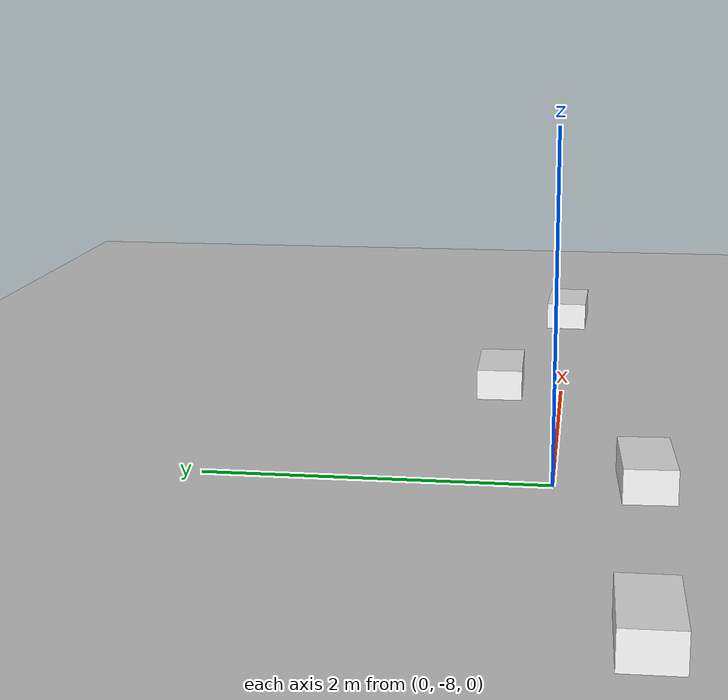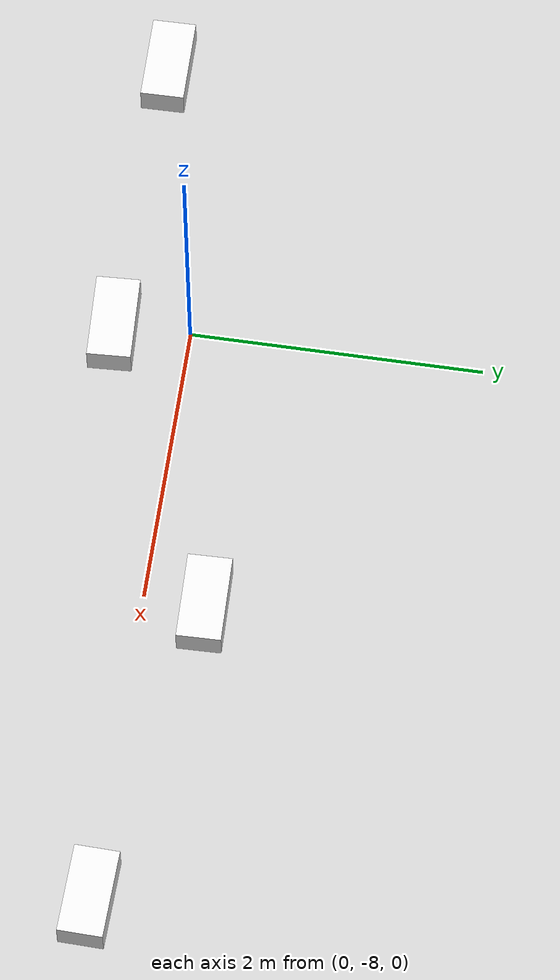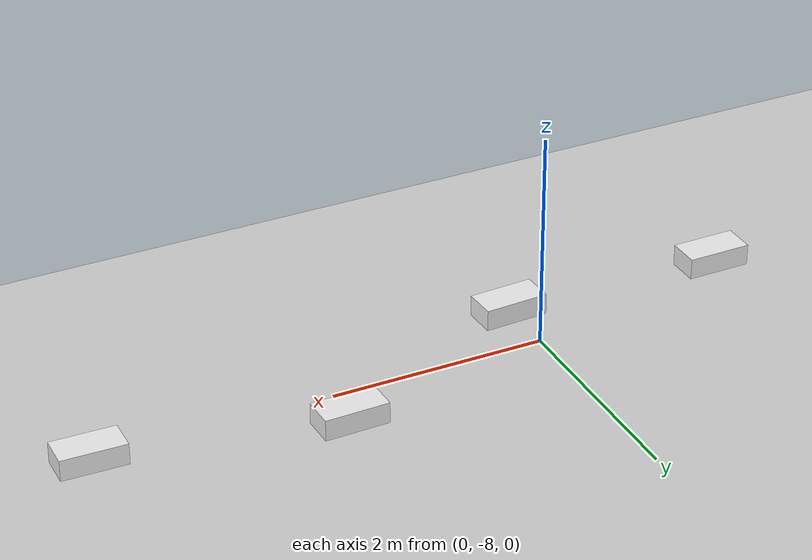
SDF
<sdf version="1.7">
 <world name="default">
  <light name="sun" type="directional">
   <pose>0 0 10 0 -0 0</pose>
   <diffuse>0.8 0.8 0.8 1</diffuse>
   <specular>0.2 0.2 0.2 1</specular>
   <attenuation>
    <range>1000</range>
    <constant>0.9</constant>
    <linear>0.01</linear>
    <quadratic>0.001</quadratic>
   </attenuation>
   <direction>-0.5 0.1 -0.9</direction>
   <spot><inner_angle>0</inner_angle><outer_angle>0</outer_angle><falloff>0</falloff></spot>
  </light>
  <model name="track_plane">
   <static>1</static>
   <link name="link">
    <collision name="collision">
     <geometry><plane><normal>0 0 1</normal><size>90 90</size></plane></geometry>
     <surface><friction><ode><mu>100</mu><mu2>50</mu2></ode></friction></surface>
    </collision>
    <visual name="visual">
     <cast_shadows>0</cast_shadows>
     <geometry><plane><normal>0 0 1</normal><size>22 22</size></plane></geometry>
     <material>
      <script><uri>model://materials/gazebo.material</uri><name>Carolo/Track_texture2</name></script>
     </material>
    </visual>
   </link>
  </model>
  <gravity>0 0 -9.8</gravity>
  <magnetic_field>6e-06 2.3e-05 -4.2e-05</magnetic_field>
  <atmosphere type="adiabatic"/>
  <physics type="bullet">
   <max_step_size>0.001</max_step_size>
   <real_time_factor>1</real_time_factor>
   <real_time_update_rate>1000</real_time_update_rate>
  </physics>
  <scene><ambient>0.4 0.4 0.4 1</ambient><background>0.7 0.7 0.7 1</background><shadows>1</shadows></scene>
  <spherical_coordinates>
   <surface_model>EARTH_WGS84</surface_model>
   <latitude_deg>0</latitude_deg>
   <longitude_deg>0</longitude_deg>
   <elevation>0</elevation>
   <heading_deg>0</heading_deg>
  </spherical_coordinates>
  <model name="unit_box_white">
   <link name="link">
    <inertial>
     <mass>1</mass>
     <inertia>
      <ixx>0.166667</ixx>
      <ixy>0</ixy>
      <ixz>0</ixz>
      <iyy>0.166667</iyy>
      <iyz>0</iyz>
      <izz>0.166667</izz>
     </inertia>
    </inertial>
    <visual name="visual">
     <geometry><box><size>0.6 0.3 0.2</size></box></geometry>
     <material>
      <script><name>Gazebo/White</name><uri>file://media/materials/scripts/gazebo.material</uri></script>
      <shader type="pixel"><normal_map>__default__</normal_map></shader>
      <ambient>1 1 1 1</ambient>
      <diffuse>0.7 0.7 0.7 1</diffuse>
      <specular>0.01 0.01 0.01 1</specular>
      <emissive>0 0 0 1</emissive>
      <lighting>1</lighting>
     </material>
    </visual>
    <collision name="collision">
     <geometry><box><size>0.6 0.3 0.2</size></box></geometry>
     <surface>
      <friction>
       <ode><mu>1</mu><mu2>1</mu2><fdir1>0 0 0</fdir1><slip1>0</slip1><slip2>0</slip2></ode>
       <torsional>
        <coefficient>1</coefficient>
        <patch_radius>0</patch_radius>
        <surface_radius>0</surface_radius>
        <use_patch_radius>1</use_patch_radius>
        <ode><slip>0</slip></ode>
       </torsional>
      </friction>
      <bounce><restitution_coefficient>0</restitution_coefficient><threshold>1e+06</threshold></bounce>
      <contact>
       <collide_without_contact>0</collide_without_contact>
       <collide_without_contact_bitmask>1</collide_without_contact_bitmask>
       <collide_bitmask>1</collide_bitmask>
       <ode>
        <soft_cfm>0</soft_cfm>
        <soft_erp>0.2</soft_erp>
        <kp>1e+13</kp>
        <kd>1</kd>
        <max_vel>0.01</max_vel>
        <min_depth>0</min_depth>
       </ode>
       <bullet>
        <split_impulse>1</split_impulse>
        <split_impulse_penetration_threshold>-0.01</split_impulse_penetration_threshold>
        <soft_cfm>0</soft_cfm>
        <soft_erp>0.2</soft_erp>
        <kp>1e+13</kp>
        <kd>1</kd>
       </bullet>
      </contact>
     </surface>
    </collision>
   </link>
   <static>0</static>
   <pose>-2.02674 -8.4692 0.1 0 -0 0.009254</pose>
  </model>
  <model name="unit_box_white_clone">
   <link name="link">
    <inertial>
     <mass>1</mass>
     <inertia>
      <ixx>0.166667</ixx>
      <ixy>0</ixy>
      <ixz>0</ixz>
      <iyy>0.166667</iyy>
      <iyz>0</iyz>
      <izz>0.166667</izz>
     </inertia>
    </inertial>
    <visual name="visual">
     <geometry><box><size>0.6 0.3 0.2</size></box></geometry>
     <material>
      <script><name>Gazebo/White</name><uri>file://media/materials/scripts/gazebo.material</uri></script>
      <shader type="pixel"><normal_map>__default__</normal_map></shader>
      <ambient>1 1 1 1</ambient>
      <diffuse>0.7 0.7 0.7 1</diffuse>
      <specular>0.01 0.01 0.01 1</specular>
      <emissive>0 0 0 1</emissive>
      <lighting>1</lighting>
     </material>
    </visual>
    <collision name="collision">
     <geometry><box><size>0.6 0.3 0.2</size></box></geometry>
     <surface>
      <friction>
       <ode><mu>1</mu><mu2>1</mu2><fdir1>0 0 0</fdir1><slip1>0</slip1><slip2>0</slip2></ode>
       <torsional>
        <coefficient>1</coefficient>
        <patch_radius>0</patch_radius>
        <surface_radius>0</surface_radius>
        <use_patch_radius>1</use_patch_radius>
        <ode><slip>0</slip></ode>
       </torsional>
      </friction>
      <bounce><restitution_coefficient>0</restitution_coefficient><threshold>1e+06</threshold></bounce>
      <contact>
       <collide_without_contact>0</collide_without_contact>
       <collide_without_contact_bitmask>1</collide_without_contact_bitmask>
       <collide_bitmask>1</collide_bitmask>
       <ode>
        <soft_cfm>0</soft_cfm>
        <soft_erp>0.2</soft_erp>
        <kp>1e+13</kp>
        <kd>1</kd>
        <max_vel>0.01</max_vel>
        <min_depth>0</min_depth>
       </ode>
       <bullet>
        <split_impulse>1</split_impulse>
        <split_impulse_penetration_threshold>-0.01</split_impulse_penetration_threshold>
        <soft_cfm>0</soft_cfm>
        <soft_erp>0.2</soft_erp>
        <kp>1e+13</kp>
        <kd>1</kd>
       </bullet>
      </contact>
     </surface>
    </collision>
   </link>
   <static>0</static>
   <pose>0.044329 -8.51614 0.1 0 -0 0.047052</pose>
  </model>
  <model name="unit_box_white_clone_0">
   <link name="link">
    <inertial>
     <mass>1</mass>
     <inertia>
      <ixx>0.166667</ixx>
      <ixy>0</ixy>
      <ixz>0</ixz>
      <iyy>0.166667</iyy>
      <iyz>0</iyz>
      <izz>0.166667</izz>
     </inertia>
    </inertial>
    <visual name="visual">
     <geometry><box><size>0.6 0.3 0.2</size></box></geometry>
     <material>
      <script><name>Gazebo/White</name><uri>file://media/materials/scripts/gazebo.material</uri></script>
      <shader type="pixel"><normal_map>__default__</normal_map></shader>
      <ambient>1 1 1 1</ambient>
      <diffuse>0.7 0.7 0.7 1</diffuse>
      <specular>0.01 0.01 0.01 1</specular>
      <emissive>0 0 0 1</emissive>
      <lighting>1</lighting>
     </material>
    </visual>
    <collision name="collision">
     <geometry><box><size>0.6 0.3 0.2</size></box></geometry>
     <surface>
      <friction>
       <ode><mu>1</mu><mu2>1</mu2><fdir1>0 0 0</fdir1><slip1>0</slip1><slip2>0</slip2></ode>
       <torsional>
        <coefficient>1</coefficient>
        <patch_radius>0</patch_radius>
        <surface_radius>0</surface_radius>
        <use_patch_radius>1</use_patch_radius>
        <ode><slip>0</slip></ode>
       </torsional>
      </friction>
      <bounce><restitution_coefficient>0</restitution_coefficient><threshold>1e+06</threshold></bounce>
      <contact>
       <collide_without_contact>0</collide_without_contact>
       <collide_without_contact_bitmask>1</collide_without_contact_bitmask>
       <collide_bitmask>1</collide_bitmask>
       <ode>
        <soft_cfm>0</soft_cfm>
        <soft_erp>0.2</soft_erp>
        <kp>1e+13</kp>
        <kd>1</kd>
        <max_vel>0.01</max_vel>
        <min_depth>0</min_depth>
       </ode>
       <bullet>
        <split_impulse>1</split_impulse>
        <split_impulse_penetration_threshold>-0.01</split_impulse_penetration_threshold>
        <soft_cfm>0</soft_cfm>
        <soft_erp>0.2</soft_erp>
        <kp>1e+13</kp>
        <kd>1</kd>
       </bullet>
      </contact>
     </surface>
    </collision>
   </link>
   <static>0</static>
   <pose>4.19952 -7.99869 0.1 0 0 -0.028175</pose>
  </model>
  <model name="unit_box_white_clone_1">
   <link name="link">
    <inertial>
     <mass>1</mass>
     <inertia>
      <ixx>0.166667</ixx>
      <ixy>0</ixy>
      <ixz>0</ixz>
      <iyy>0.166667</iyy>
      <iyz>0</iyz>
      <izz>0.166667</izz>
     </inertia>
    </inertial>
    <visual name="visual">
     <geometry><box><size>0.6 0.3 0.2</size></box></geometry>
     <material>
      <script><name>Gazebo/White</name><uri>file://media/materials/scripts/gazebo.material</uri></script>
      <shader type="pixel"><normal_map>__default__</normal_map></shader>
      <ambient>1 1 1 1</ambient>
      <diffuse>0.7 0.7 0.7 1</diffuse>
      <specular>0.01 0.01 0.01 1</specular>
      <emissive>0 0 0 1</emissive>
      <lighting>1</lighting>
     </material>
    </visual>
    <collision name="collision">
     <geometry><box><size>0.6 0.3 0.2</size></box></geometry>
     <surface>
      <friction>
       <ode><mu>1</mu><mu2>1</mu2><fdir1>0 0 0</fdir1><slip1>0</slip1><slip2>0</slip2></ode>
       <torsional>
        <coefficient>1</coefficient>
        <patch_radius>0</patch_radius>
        <surface_radius>0</surface_radius>
        <use_patch_radius>1</use_patch_radius>
        <ode><slip>0</slip></ode>
       </torsional>
      </friction>
      <bounce><restitution_coefficient>0</restitution_coefficient><threshold>1e+06</threshold></bounce>
      <contact>
       <collide_without_contact>0</collide_without_contact>
       <collide_without_contact_bitmask>1</collide_without_contact_bitmask>
       <collide_bitmask>1</collide_bitmask>
       <ode>
        <soft_cfm>0</soft_cfm>
        <soft_erp>0.2</soft_erp>
        <kp>1e+13</kp>
        <kd>1</kd>
        <max_vel>0.01</max_vel>
        <min_depth>0</min_depth>
       </ode>
       <bullet>
        <split_impulse>1</split_impulse>
        <split_impulse_penetration_threshold>-0.01</split_impulse_penetration_threshold>
        <soft_cfm>0</soft_cfm>
        <soft_erp>0.2</soft_erp>
        <kp>1e+13</kp>
        <kd>1</kd>
       </bullet>
      </contact>
     </surface>
    </collision>
   </link>
   <static>0</static>
   <pose>2.03382 -7.58578 0.1 0 -0 0.021314</pose>
  </model>
 </world>
</sdf>
